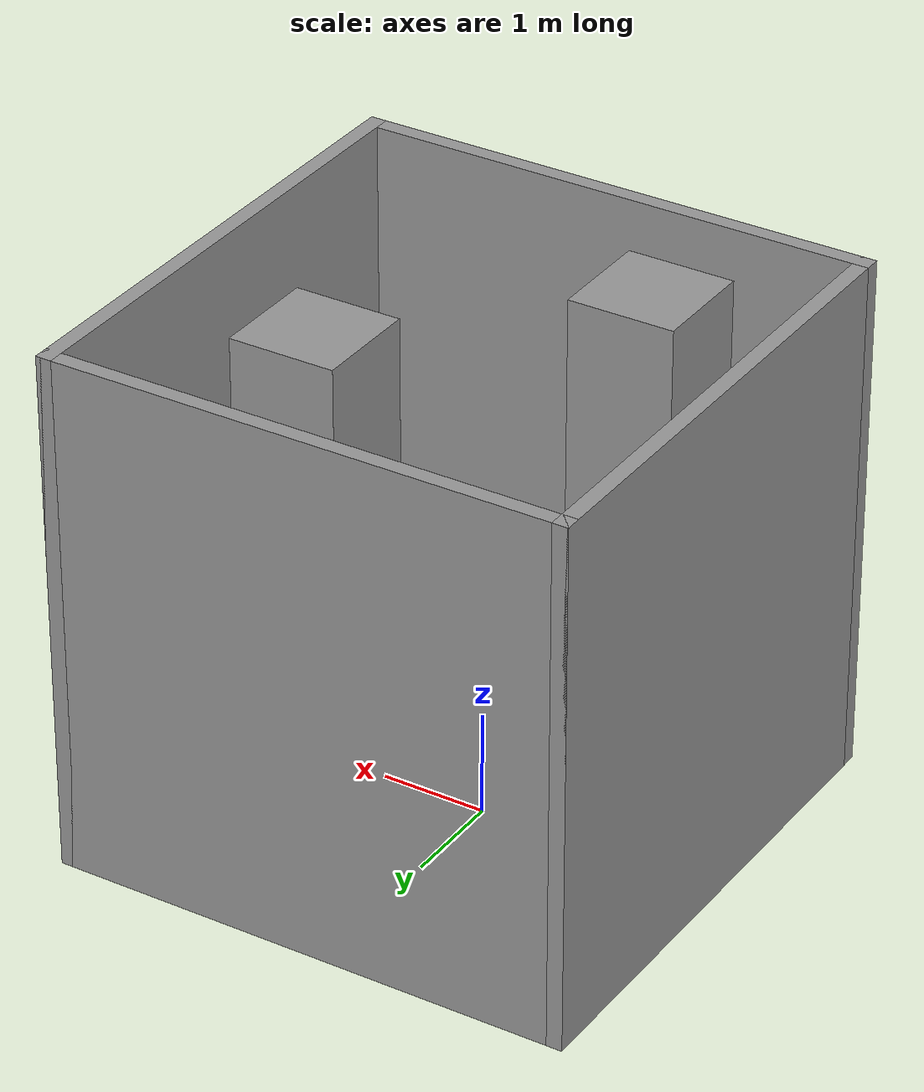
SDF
<?xml version='1.0'?>
<sdf version='1.7'>
  <model name='env3'>
    <link name='link_4'>
      <inertial>
        <mass>5.75157</mass>
        <inertia>
          <ixx>16.3347</ixx>
          <ixy>0</ixy>
          <ixz>0</ixz>
          <iyy>16.3347</iyy>
          <iyz>0</iyz>
          <izz>0.958595</izz>
        </inertia>
        <pose>0 0 0 0 -0 0</pose>
      </inertial>
      <pose>1 1 2.5 0 -0 0</pose>
      <gravity>1</gravity>
      <self_collide>0</self_collide>
      <kinematic>0</kinematic>
      <enable_wind>0</enable_wind>
      <visual name='visual'>
        <pose>0 0 0 0 -0 0</pose>
        <geometry>
          <box>
            <size>1 1 5</size>
          </box>
        </geometry>
        <material>
          <lighting>1</lighting>
          <script>
            <uri>file://media/materials/scripts/gazebo.material</uri>
            <name>Gazebo/Grey</name>
          </script>
          <shader type='pixel'>
            <normal_map>__default__</normal_map>
          </shader>
          <ambient>0.3 0.3 0.3 1</ambient>
          <diffuse>0.7 0.7 0.7 1</diffuse>
          <specular>0.01 0.01 0.01 1</specular>
          <emissive>0 0 0 1</emissive>
        </material>
        <transparency>0</transparency>
        <cast_shadows>1</cast_shadows>
      </visual>
      <collision name='collision'>
        <laser_retro>0</laser_retro>
        <max_contacts>10</max_contacts>
        <pose>0 0 0 0 -0 0</pose>
        <geometry>
          <box>
            <size>1 1 5</size>
          </box>
        </geometry>
        <surface>
          <friction>
            <ode>
              <mu>1</mu>
              <mu2>1</mu2>
              <fdir1>0 0 0</fdir1>
              <slip1>0</slip1>
              <slip2>0</slip2>
            </ode>
            <torsional>
              <coefficient>1</coefficient>
              <patch_radius>0</patch_radius>
              <surface_radius>0</surface_radius>
              <use_patch_radius>1</use_patch_radius>
              <ode>
                <slip>0</slip>
              </ode>
            </torsional>
          </friction>
          <bounce>
            <restitution_coefficient>0</restitution_coefficient>
            <threshold>1e+06</threshold>
          </bounce>
          <contact>
            <collide_without_contact>0</collide_without_contact>
            <collide_without_contact_bitmask>1</collide_without_contact_bitmask>
            <collide_bitmask>1</collide_bitmask>
            <ode>
              <soft_cfm>0</soft_cfm>
              <soft_erp>0.2</soft_erp>
              <kp>1e+13</kp>
              <kd>1</kd>
              <max_vel>0.01</max_vel>
              <min_depth>0</min_depth>
            </ode>
            <bullet>
              <split_impulse>1</split_impulse>
              <split_impulse_penetration_threshold>-0.01</split_impulse_penetration_threshold>
              <soft_cfm>0</soft_cfm>
              <soft_erp>0.2</soft_erp>
              <kp>1e+13</kp>
              <kd>1</kd>
            </bullet>
          </contact>
        </surface>
      </collision>
    </link>
    <link name='link_5'>
      <inertial>
        <mass>1</mass>
        <inertia>
          <ixx>0.166667</ixx>
          <ixy>0</ixy>
          <ixz>0</ixz>
          <iyy>0.166667</iyy>
          <iyz>0</iyz>
          <izz>0.166667</izz>
        </inertia>
        <pose>0 0 0 0 -0 0</pose>
      </inertial>
      <pose>1 -1 0.5 0 -0 0</pose>
      <gravity>1</gravity>
      <self_collide>0</self_collide>
      <kinematic>0</kinematic>
      <enable_wind>0</enable_wind>
      <visual name='visual'>
        <pose>0 0 0 0 -0 0</pose>
        <geometry>
          <box>
            <size>1 1 1</size>
          </box>
        </geometry>
        <material>
          <lighting>1</lighting>
          <script>
            <uri>file://media/materials/scripts/gazebo.material</uri>
            <name>Gazebo/Grey</name>
          </script>
          <shader type='pixel'>
            <normal_map>__default__</normal_map>
          </shader>
          <ambient>0.3 0.3 0.3 1</ambient>
          <diffuse>0.7 0.7 0.7 1</diffuse>
          <specular>0.01 0.01 0.01 1</specular>
          <emissive>0 0 0 1</emissive>
        </material>
        <transparency>0</transparency>
        <cast_shadows>1</cast_shadows>
      </visual>
      <collision name='collision'>
        <laser_retro>0</laser_retro>
        <max_contacts>10</max_contacts>
        <pose>0 0 0 0 -0 0</pose>
        <geometry>
          <box>
            <size>1 1 1</size>
          </box>
        </geometry>
        <surface>
          <friction>
            <ode>
              <mu>1</mu>
              <mu2>1</mu2>
              <fdir1>0 0 0</fdir1>
              <slip1>0</slip1>
              <slip2>0</slip2>
            </ode>
            <torsional>
              <coefficient>1</coefficient>
              <patch_radius>0</patch_radius>
              <surface_radius>0</surface_radius>
              <use_patch_radius>1</use_patch_radius>
              <ode>
                <slip>0</slip>
              </ode>
            </torsional>
          </friction>
          <bounce>
            <restitution_coefficient>0</restitution_coefficient>
            <threshold>1e+06</threshold>
          </bounce>
          <contact>
            <collide_without_contact>0</collide_without_contact>
            <collide_without_contact_bitmask>1</collide_without_contact_bitmask>
            <collide_bitmask>1</collide_bitmask>
            <ode>
              <soft_cfm>0</soft_cfm>
              <soft_erp>0.2</soft_erp>
              <kp>1e+13</kp>
              <kd>1</kd>
              <max_vel>0.01</max_vel>
              <min_depth>0</min_depth>
            </ode>
            <bullet>
              <split_impulse>1</split_impulse>
              <split_impulse_penetration_threshold>-0.01</split_impulse_penetration_threshold>
              <soft_cfm>0</soft_cfm>
              <soft_erp>0.2</soft_erp>
              <kp>1e+13</kp>
              <kd>1</kd>
            </bullet>
          </contact>
        </surface>
      </collision>
    </link>
    <link name='link_6'>
      <inertial>
        <mass>1</mass>
        <inertia>
          <ixx>0.166667</ixx>
          <ixy>0</ixy>
          <ixz>0</ixz>
          <iyy>0.166667</iyy>
          <iyz>0</iyz>
          <izz>0.166667</izz>
        </inertia>
        <pose>0 0 0 0 -0 0</pose>
      </inertial>
      <pose>-1 1 0.5 0 -0 0</pose>
      <gravity>1</gravity>
      <self_collide>0</self_collide>
      <kinematic>0</kinematic>
      <enable_wind>0</enable_wind>
      <visual name='visual'>
        <pose>0 0 0 0 -0 0</pose>
        <geometry>
          <box>
            <size>1 1 1</size>
          </box>
        </geometry>
        <material>
          <lighting>1</lighting>
          <script>
            <uri>file://media/materials/scripts/gazebo.material</uri>
            <name>Gazebo/Grey</name>
          </script>
          <shader type='pixel'>
            <normal_map>__default__</normal_map>
          </shader>
          <ambient>0.3 0.3 0.3 1</ambient>
          <diffuse>0.7 0.7 0.7 1</diffuse>
          <specular>0.01 0.01 0.01 1</specular>
          <emissive>0 0 0 1</emissive>
        </material>
        <transparency>0</transparency>
        <cast_shadows>1</cast_shadows>
      </visual>
      <collision name='collision'>
        <laser_retro>0</laser_retro>
        <max_contacts>10</max_contacts>
        <pose>0 0 0 0 -0 0</pose>
        <geometry>
          <box>
            <size>1 1 1</size>
          </box>
        </geometry>
        <surface>
          <friction>
            <ode>
              <mu>1</mu>
              <mu2>1</mu2>
              <fdir1>0 0 0</fdir1>
              <slip1>0</slip1>
              <slip2>0</slip2>
            </ode>
            <torsional>
              <coefficient>1</coefficient>
              <patch_radius>0</patch_radius>
              <surface_radius>0</surface_radius>
              <use_patch_radius>1</use_patch_radius>
              <ode>
                <slip>0</slip>
              </ode>
            </torsional>
          </friction>
          <bounce>
            <restitution_coefficient>0</restitution_coefficient>
            <threshold>1e+06</threshold>
          </bounce>
          <contact>
            <collide_without_contact>0</collide_without_contact>
            <collide_without_contact_bitmask>1</collide_without_contact_bitmask>
            <collide_bitmask>1</collide_bitmask>
            <ode>
              <soft_cfm>0</soft_cfm>
              <soft_erp>0.2</soft_erp>
              <kp>1e+13</kp>
              <kd>1</kd>
              <max_vel>0.01</max_vel>
              <min_depth>0</min_depth>
            </ode>
            <bullet>
              <split_impulse>1</split_impulse>
              <split_impulse_penetration_threshold>-0.01</split_impulse_penetration_threshold>
              <soft_cfm>0</soft_cfm>
              <soft_erp>0.2</soft_erp>
              <kp>1e+13</kp>
              <kd>1</kd>
            </bullet>
          </contact>
        </surface>
      </collision>
    </link>
    <link name='link_7'>
      <inertial>
        <mass>1</mass>
        <inertia>
          <ixx>0.166667</ixx>
          <ixy>0</ixy>
          <ixz>0</ixz>
          <iyy>0.166667</iyy>
          <iyz>0</iyz>
          <izz>0.166667</izz>
        </inertia>
        <pose>0 0 0 0 -0 0</pose>
      </inertial>
      <pose>-1 -1 2.5 0 -0 0</pose>
      <gravity>1</gravity>
      <self_collide>0</self_collide>
      <kinematic>0</kinematic>
      <enable_wind>0</enable_wind>
      <visual name='visual'>
        <pose>0 0 0 0 -0 0</pose>
        <geometry>
          <box>
            <size>1 1 5</size>
          </box>
        </geometry>
        <material>
          <lighting>1</lighting>
          <script>
            <uri>file://media/materials/scripts/gazebo.material</uri>
            <name>Gazebo/Grey</name>
          </script>
          <shader type='pixel'>
            <normal_map>__default__</normal_map>
          </shader>
          <ambient>0.3 0.3 0.3 1</ambient>
          <diffuse>0.7 0.7 0.7 1</diffuse>
          <specular>0.01 0.01 0.01 1</specular>
          <emissive>0 0 0 1</emissive>
        </material>
        <transparency>0</transparency>
        <cast_shadows>1</cast_shadows>
      </visual>
      <collision name='collision'>
        <laser_retro>0</laser_retro>
        <max_contacts>10</max_contacts>
        <pose>0 0 0 0 -0 0</pose>
        <geometry>
          <box>
            <size>1 1 5</size>
          </box>
        </geometry>
        <surface>
          <friction>
            <ode>
              <mu>1</mu>
              <mu2>1</mu2>
              <fdir1>0 0 0</fdir1>
              <slip1>0</slip1>
              <slip2>0</slip2>
            </ode>
            <torsional>
              <coefficient>1</coefficient>
              <patch_radius>0</patch_radius>
              <surface_radius>0</surface_radius>
              <use_patch_radius>1</use_patch_radius>
              <ode>
                <slip>0</slip>
              </ode>
            </torsional>
          </friction>
          <bounce>
            <restitution_coefficient>0</restitution_coefficient>
            <threshold>1e+06</threshold>
          </bounce>
          <contact>
            <collide_without_contact>0</collide_without_contact>
            <collide_without_contact_bitmask>1</collide_without_contact_bitmask>
            <collide_bitmask>1</collide_bitmask>
            <ode>
              <soft_cfm>0</soft_cfm>
              <soft_erp>0.2</soft_erp>
              <kp>1e+13</kp>
              <kd>1</kd>
              <max_vel>0.01</max_vel>
              <min_depth>0</min_depth>
            </ode>
            <bullet>
              <split_impulse>1</split_impulse>
              <split_impulse_penetration_threshold>-0.01</split_impulse_penetration_threshold>
              <soft_cfm>0</soft_cfm>
              <soft_erp>0.2</soft_erp>
              <kp>1e+13</kp>
              <kd>1</kd>
            </bullet>
          </contact>
        </surface>
      </collision>
    </link>
    <model name='roomx2'>
      <pose>0.158067 0.066165 0 0 -0 0</pose>
      <link name='Wall_84'>
        <collision name='Wall_84_Collision'>
          <geometry>
            <box>
              <size>5 0.15 5</size>
            </box>
          </geometry>
          <pose>0 0 2.5 0 -0 0</pose>
          <max_contacts>10</max_contacts>
          <surface>
            <contact>
              <ode/>
            </contact>
            <bounce/>
            <friction>
              <torsional>
                <ode/>
              </torsional>
              <ode/>
            </friction>
          </surface>
        </collision>
        <visual name='Wall_84_Visual'>
          <pose>0 0 2.5 0 -0 0</pose>
          <geometry>
            <box>
              <size>5 0.15 5</size>
            </box>
          </geometry>
          <material>
            <script>
              <uri>file://media/materials/scripts/gazebo.material</uri>
              <name>Gazebo/Grey</name>
            </script>
            <ambient>1 1 1 1</ambient>
          </material>
          <meta>
            <layer>0</layer>
          </meta>
        </visual>
        <pose>0 2.425 0 0 -0 0</pose>
        <self_collide>0</self_collide>
        <enable_wind>0</enable_wind>
        <kinematic>0</kinematic>
      </link>
      <link name='Wall_85'>
        <collision name='Wall_85_Collision'>
          <geometry>
            <box>
              <size>5 0.15 5</size>
            </box>
          </geometry>
          <pose>0 0 2.5 0 -0 0</pose>
          <max_contacts>10</max_contacts>
          <surface>
            <contact>
              <ode/>
            </contact>
            <bounce/>
            <friction>
              <torsional>
                <ode/>
              </torsional>
              <ode/>
            </friction>
          </surface>
        </collision>
        <visual name='Wall_85_Visual'>
          <pose>0 0 2.5 0 -0 0</pose>
          <geometry>
            <box>
              <size>5 0.15 5</size>
            </box>
          </geometry>
          <material>
            <script>
              <uri>file://media/materials/scripts/gazebo.material</uri>
              <name>Gazebo/Grey</name>
            </script>
            <ambient>1 1 1 1</ambient>
          </material>
          <meta>
            <layer>0</layer>
          </meta>
        </visual>
        <pose>2.425 0 0 0 -0 -1.5708</pose>
        <self_collide>0</self_collide>
        <enable_wind>0</enable_wind>
        <kinematic>0</kinematic>
      </link>
      <link name='Wall_86'>
        <collision name='Wall_86_Collision'>
          <geometry>
            <box>
              <size>5 0.15 5</size>
            </box>
          </geometry>
          <pose>0 0 2.5 0 -0 0</pose>
          <max_contacts>10</max_contacts>
          <surface>
            <contact>
              <ode/>
            </contact>
            <bounce/>
            <friction>
              <torsional>
                <ode/>
              </torsional>
              <ode/>
            </friction>
          </surface>
        </collision>
        <visual name='Wall_86_Visual'>
          <pose>0 0 2.5 0 -0 0</pose>
          <geometry>
            <box>
              <size>5 0.15 5</size>
            </box>
          </geometry>
          <material>
            <script>
              <uri>file://media/materials/scripts/gazebo.material</uri>
              <name>Gazebo/Grey</name>
            </script>
            <ambient>1 1 1 1</ambient>
          </material>
          <meta>
            <layer>0</layer>
          </meta>
        </visual>
        <pose>0 -2.425 0 0 -0 3.14159</pose>
        <self_collide>0</self_collide>
        <enable_wind>0</enable_wind>
        <kinematic>0</kinematic>
      </link>
      <link name='Wall_87'>
        <collision name='Wall_87_Collision'>
          <geometry>
            <box>
              <size>5 0.15 5</size>
            </box>
          </geometry>
          <pose>0 0 2.5 0 -0 0</pose>
          <max_contacts>10</max_contacts>
          <surface>
            <contact>
              <ode/>
            </contact>
            <bounce/>
            <friction>
              <torsional>
                <ode/>
              </torsional>
              <ode/>
            </friction>
          </surface>
        </collision>
        <visual name='Wall_87_Visual'>
          <pose>0 0 2.5 0 -0 0</pose>
          <geometry>
            <box>
              <size>5 0.15 5</size>
            </box>
          </geometry>
          <material>
            <script>
              <uri>file://media/materials/scripts/gazebo.material</uri>
              <name>Gazebo/Grey</name>
            </script>
            <ambient>1 1 1 1</ambient>
          </material>
          <meta>
            <layer>0</layer>
          </meta>
        </visual>
        <pose>-2.425 0 0 0 -0 1.5708</pose>
        <self_collide>0</self_collide>
        <enable_wind>0</enable_wind>
        <kinematic>0</kinematic>
      </link>
      <static>1</static>
    </model>
    <static>0</static>
    <allow_auto_disable>1</allow_auto_disable>
  </model>
</sdf>
